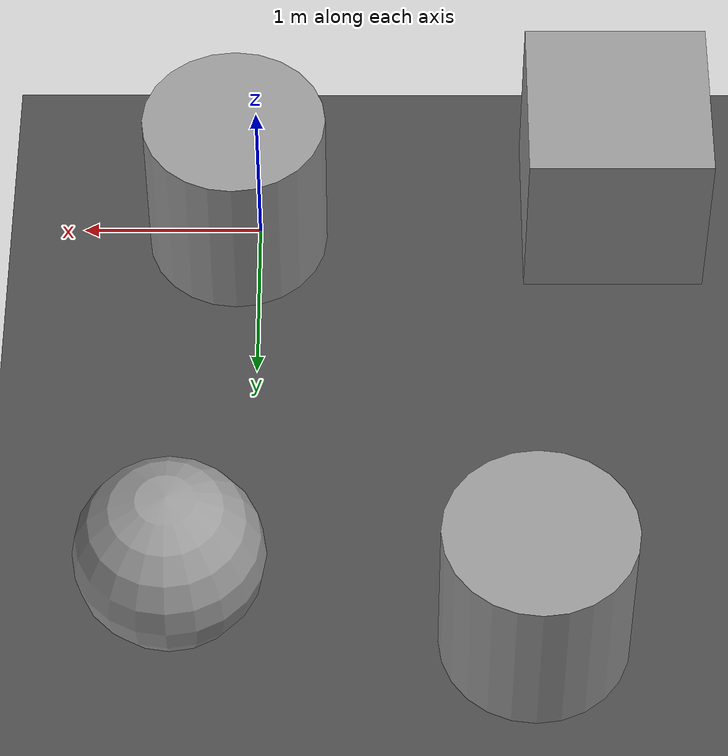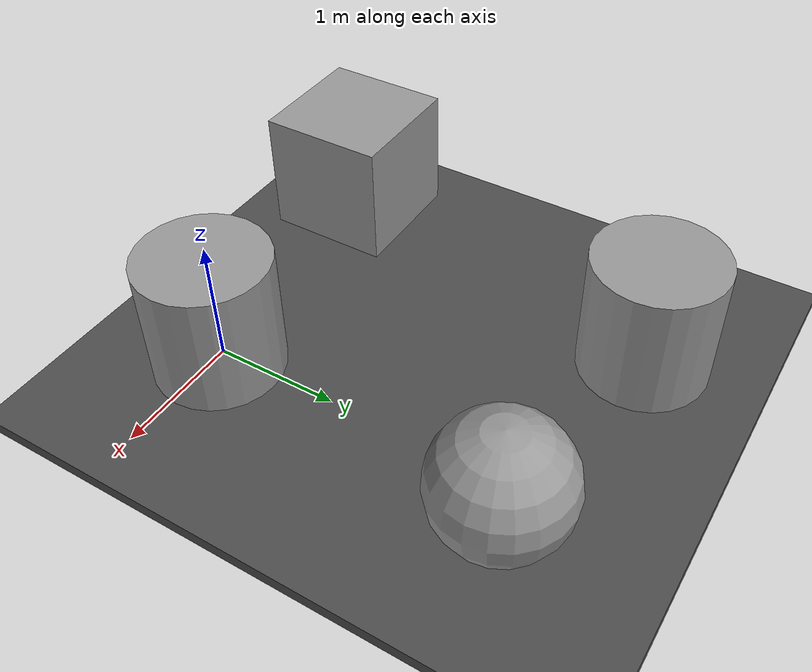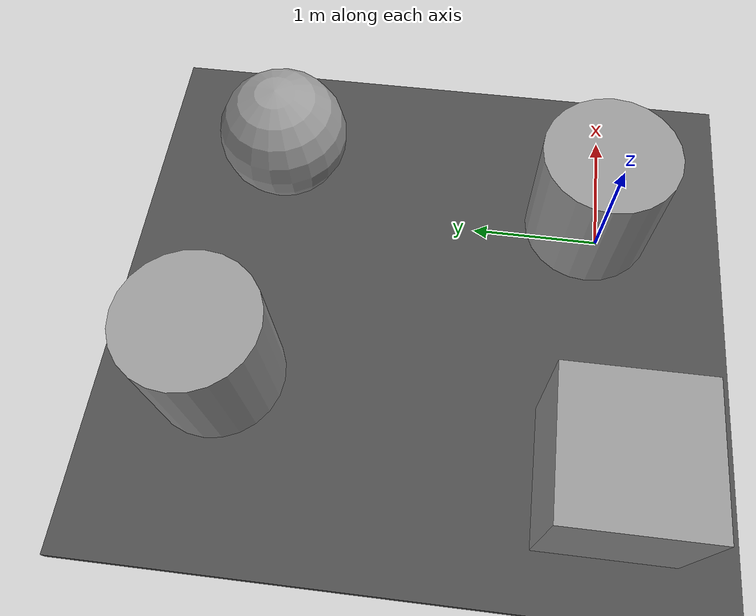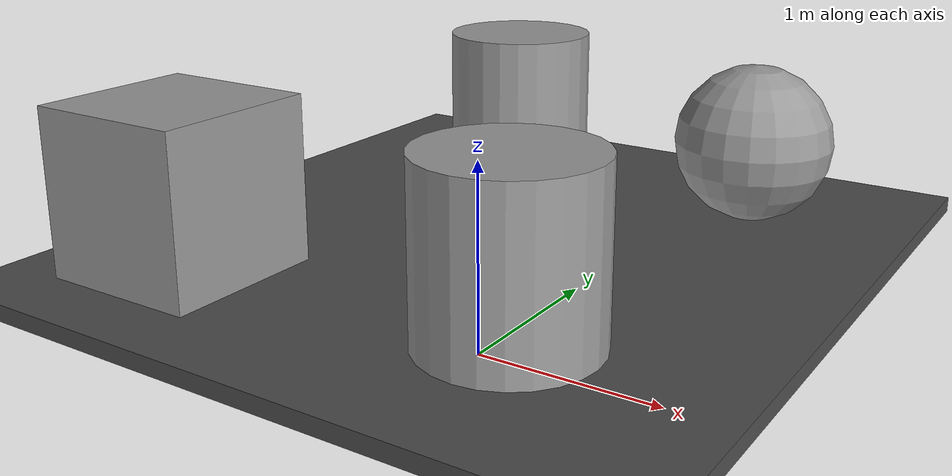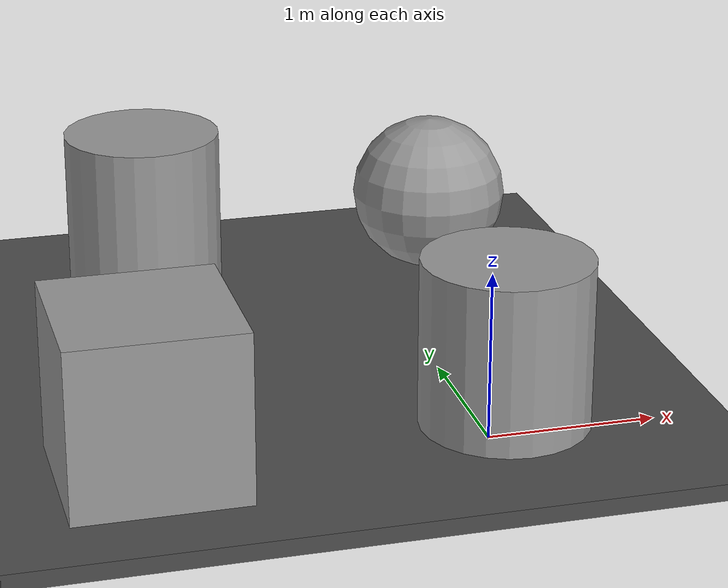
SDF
<sdf version="1.6">
 <world name="default">
  <light name="sun" type="directional">
   <pose>0 0 10 0 -0 0</pose>
   <diffuse>0.8 0.8 0.8 1</diffuse>
   <specular>0.1 0.1 0.1 1</specular>
   <attenuation>
    <range>1000</range>
    <constant>0.9</constant>
    <linear>0.01</linear>
    <quadratic>0.001</quadratic>
   </attenuation>
   <direction>-0.5 0.5 -1</direction>
  </light>
  <model name="ground_plane">
   <static>1</static>
   <link name="link">
    <collision name="collision">
     <geometry><plane><normal>0 0 1</normal><size>100 100</size></plane></geometry>
     <surface><friction><ode><mu>100</mu><mu2>50</mu2></ode></friction></surface>
    </collision>
    <visual name="visual">
     <cast_shadows>0</cast_shadows>
     <geometry><plane><normal>0 0 1</normal><size>100 100</size></plane></geometry>
     <material>
      <script><uri>file://media/materials/scripts/gazebo.material</uri><name>Gazebo/Grey</name></script>
     </material>
    </visual>
   </link>
  </model>
  <model name="asphalt_plane">
   <static>1</static>
   <link name="link">
    <collision name="collision"><geometry><box><size>20 20 0.1</size></box></geometry></collision>
    <visual name="visual">
     <cast_shadows>0</cast_shadows>
     <geometry><box><size>20 20 0.1</size></box></geometry>
     <material>
      <script>
       <uri>model://asphalt_plane/materials/scripts</uri>
       <uri>model://asphalt_plane/materials/textures</uri>
       <name>vrc/asphalt</name>
      </script>
     </material>
    </visual>
   </link>
  </model>
  <physics name="default_physics" default="0" type="ode">
   <ode>
    <solver>
     <type>quick</type>
     <iters>10</iters>
     <sor>1.3</sor>
     <use_dynamic_moi_rescaling>0</use_dynamic_moi_rescaling>
    </solver>
    <constraints>
     <cfm>0</cfm>
     <erp>0.2</erp>
     <contact_max_correcting_vel>100</contact_max_correcting_vel>
     <contact_surface_layer>0.001</contact_surface_layer>
    </constraints>
   </ode>
   <max_step_size>0.004</max_step_size>
   <real_time_factor>1</real_time_factor>
   <real_time_update_rate>250</real_time_update_rate>
  </physics>
  <gravity>0 0 -9.8066</gravity>
  <magnetic_field>6e-06 2.3e-05 -4.2e-05</magnetic_field>
  <atmosphere type="adiabatic"/>
  <scene><ambient>0.4 0.4 0.4 1</ambient><background>0.7 0.7 0.7 1</background><shadows>1</shadows></scene>
  <spherical_coordinates>
   <surface_model>EARTH_WGS84</surface_model>
   <latitude_deg>0</latitude_deg>
   <longitude_deg>0</longitude_deg>
   <elevation>0</elevation>
   <heading_deg>0</heading_deg>
  </spherical_coordinates>
  <model name="unit_box_0">
   <pose>-1.98176 -0.073094 0.550003 1.8e-05 5e-06 -0.000177</pose>
   <link name="link">
    <inertial>
     <mass>1</mass>
     <inertia>
      <ixx>0.166667</ixx>
      <ixy>0</ixy>
      <ixz>0</ixz>
      <iyy>0.166667</iyy>
      <iyz>0</iyz>
      <izz>0.166667</izz>
     </inertia>
    </inertial>
    <collision name="collision"><geometry><box><size>1 1 1</size></box></geometry></collision>
    <visual name="visual">
     <geometry><box><size>1 1 1</size></box></geometry>
     <material>
      <script><name>Gazebo/Grey</name><uri>file://media/materials/scripts/gazebo.material</uri></script>
     </material>
    </visual>
   </link>
  </model>
  <model name="unit_cylinder_0">
   <pose>-1.4769 2.79439 0.549992 -1e-06 1.5e-05 -4.8e-05</pose>
   <link name="link">
    <inertial>
     <mass>1</mass>
     <inertia><ixx>0.145833</ixx><ixy>0</ixy><ixz>0</ixz><iyy>0.145833</iyy><iyz>0</iyz><izz>0.125</izz></inertia>
    </inertial>
    <collision name="collision">
     <geometry><cylinder><radius>0.5</radius><length>1</length></cylinder></geometry>
    </collision>
    <visual name="visual">
     <geometry><cylinder><radius>0.5</radius><length>1</length></cylinder></geometry>
     <material>
      <script><name>Gazebo/Grey</name><uri>file://media/materials/scripts/gazebo.material</uri></script>
     </material>
    </visual>
   </link>
  </model>
  <model name="unit_cylinder_1">
   <pose>0.121542 0.089029 0.549988 2e-05 1.4e-05 2e-05</pose>
   <link name="link">
    <inertial>
     <mass>1</mass>
     <inertia><ixx>0.145833</ixx><ixy>0</ixy><ixz>0</ixz><iyy>0.145833</iyy><iyz>0</iyz><izz>0.125</izz></inertia>
    </inertial>
    <collision name="collision">
     <geometry><cylinder><radius>0.5</radius><length>1</length></cylinder></geometry>
    </collision>
    <visual name="visual">
     <geometry><cylinder><radius>0.5</radius><length>1</length></cylinder></geometry>
     <material>
      <script><name>Gazebo/Grey</name><uri>file://media/materials/scripts/gazebo.material</uri></script>
     </material>
    </visual>
   </link>
  </model>
  <model name="unit_sphere_0">
   <pose>0.40282 2.5882 0.55 0 -0 0</pose>
   <link name="link">
    <inertial>
     <mass>1</mass>
     <inertia><ixx>0.1</ixx><ixy>0</ixy><ixz>0</ixz><iyy>0.1</iyy><iyz>0</iyz><izz>0.1</izz></inertia>
    </inertial>
    <collision name="collision"><geometry><sphere><radius>0.5</radius></sphere></geometry></collision>
    <visual name="visual">
     <geometry><sphere><radius>0.5</radius></sphere></geometry>
     <material>
      <script><name>Gazebo/Grey</name><uri>file://media/materials/scripts/gazebo.material</uri></script>
     </material>
    </visual>
   </link>
  </model>
 </world>
</sdf>
